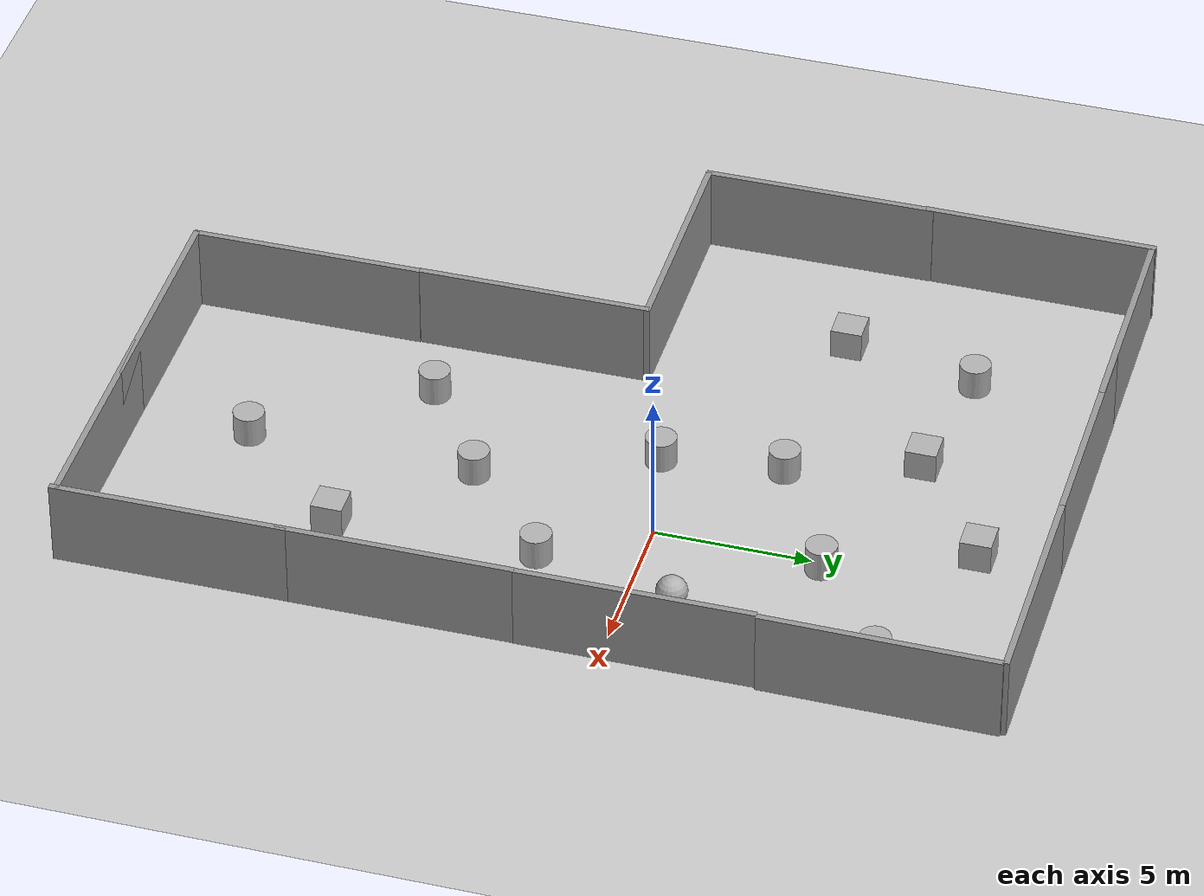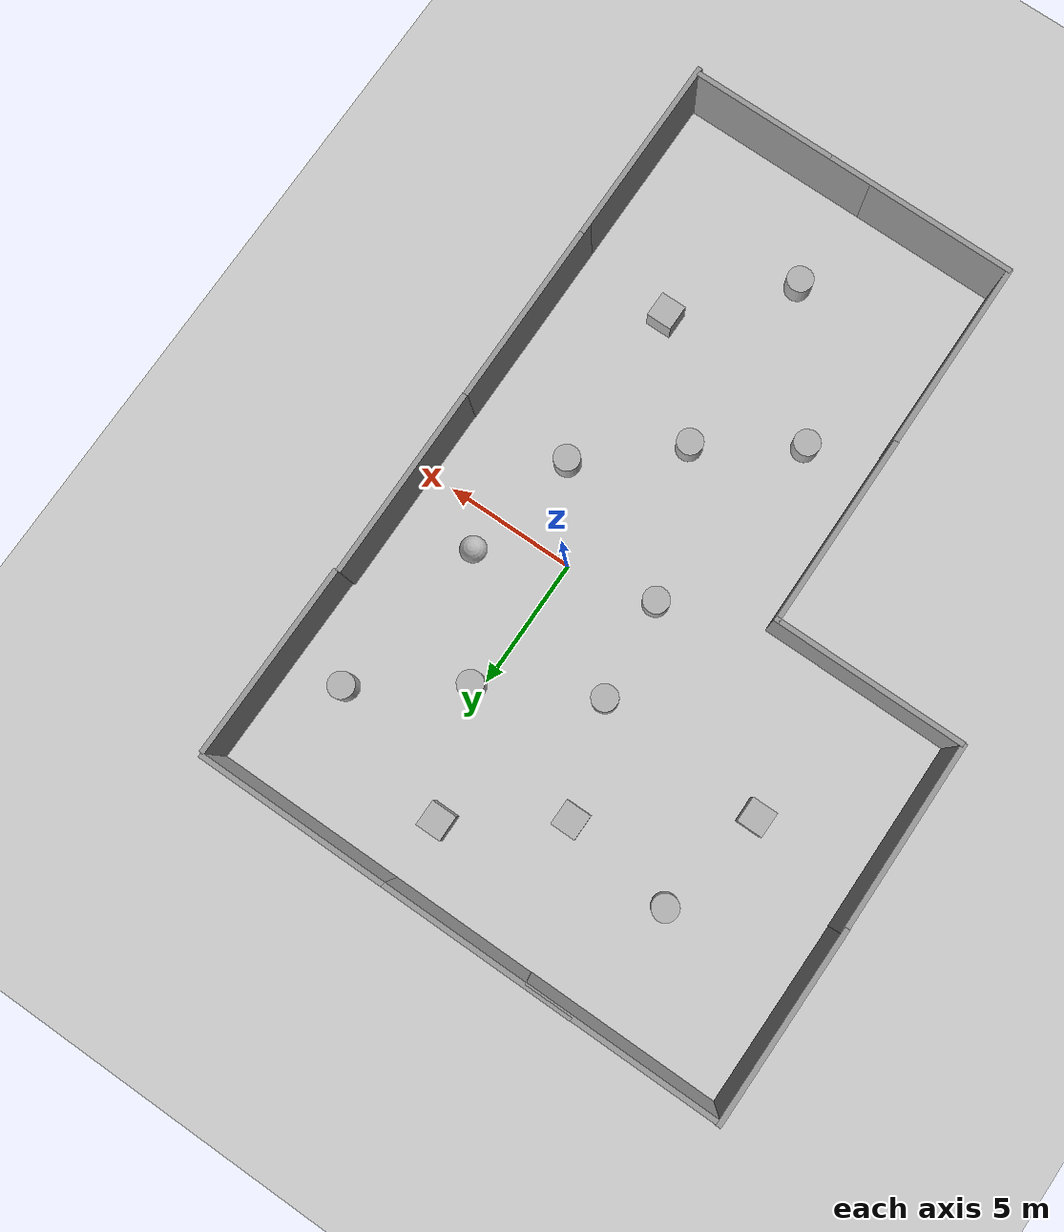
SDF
<sdf version='1.9'>
  <world name='empty'>
    <physics name='1ms' type='ignored'>
      <max_step_size>0.01</max_step_size>
      <real_time_factor>1</real_time_factor>
      <real_time_update_rate>100</real_time_update_rate>
    </physics>
    <plugin name='gz::sim::systems::Physics' filename='ignition-gazebo-physics-system'/>
    <plugin name='gz::sim::systems::UserCommands' filename='ignition-gazebo-user-commands-system'/>
    <plugin name='gz::sim::systems::SceneBroadcaster' filename='ignition-gazebo-scene-broadcaster-system'/>
    <plugin name='gz::sim::systems::Sensors' filename='ignition-gazebo-sensors-system'>
      <render_engine>ogre2</render_engine>
    </plugin>
    <plugin name='gz::sim::systems::Contact' filename='ignition-gazebo-contact-system'/>
    <gravity>0 0 -9.8</gravity>
    <magnetic_field>6e-06 2.3e-05 -4.2e-05</magnetic_field>
    <atmosphere type='adiabatic'/>
    <scene>
      <ambient>0.4 0.4 0.4 1</ambient>
      <background>0.7 0.7 0.7 1</background>
      <shadows>true</shadows>
    </scene>
    <model name='ground_plane'>
      <static>true</static>
      <link name='link'>
        <collision name='collision'>
          <geometry>
            <plane>
              <normal>0 0 1</normal>
              <size>100 100</size>
            </plane>
          </geometry>
          <surface>
            <friction>
              <ode/>
            </friction>
            <bounce/>
            <contact/>
          </surface>
        </collision>
        <visual name='visual'>
          <geometry>
            <plane>
              <normal>0 0 1</normal>
              <size>100 100</size>
            </plane>
          </geometry>
          <material>
            <ambient>0.8 0.8 0.8 1</ambient>
            <diffuse>0.8 0.8 0.8 1</diffuse>
            <specular>0.8 0.8 0.8 1</specular>
          </material>
        </visual>
        <pose>0 0 0 0 -0 0</pose>
        <inertial>
          <pose>0 0 0 0 -0 0</pose>
          <mass>1</mass>
          <inertia>
            <ixx>1</ixx>
            <ixy>0</ixy>
            <ixz>0</ixz>
            <iyy>1</iyy>
            <iyz>0</iyz>
            <izz>1</izz>
          </inertia>
        </inertial>
        <enable_wind>false</enable_wind>
      </link>
      <pose>0 0 0 0 -0 0</pose>
      <self_collide>false</self_collide>
    </model>
    <model name='grey_wall'>
      <static>true</static>
      <link name='link'>
        <pose>0 0 1.4 0 -0 0</pose>
        <collision name='collision'>
          <geometry>
            <box>
              <size>7.5 0.2 2.8</size>
            </box>
          </geometry>
          <surface>
            <friction>
              <ode/>
            </friction>
            <bounce/>
            <contact/>
          </surface>
        </collision>
        <visual name='visual'>
          <cast_shadows>false</cast_shadows>
          <geometry>
            <box>
              <size>7.5 0.2 2.8</size>
            </box>
          </geometry>
          <material>
            <script>
              <uri>https://fuel.gazebosim.org/1.0/openrobotics/models/grey wall/3/files/materials/scripts</uri>
              <uri>https://fuel.gazebosim.org/1.0/openrobotics/models/grey wall/3/files/materials/textures</uri>
              <name>vrc/grey_wall</name>
            </script>
          </material>
        </visual>
        <inertial>
          <pose>0 0 0 0 -0 0</pose>
          <mass>1</mass>
          <inertia>
            <ixx>1</ixx>
            <ixy>0</ixy>
            <ixz>0</ixz>
            <iyy>1</iyy>
            <iyz>0</iyz>
            <izz>1</izz>
          </inertia>
        </inertial>
        <enable_wind>false</enable_wind>
      </link>
      <pose>-10.8562 -2.18445 0 0 -0 0</pose>
      <self_collide>false</self_collide>
    </model>
    <model name='grey_wall_1'>
      <static>true</static>
      <link name='link'>
        <pose>0 0 1.4 0 -0 0</pose>
        <collision name='collision'>
          <geometry>
            <box>
              <size>7.5 0.2 2.8</size>
            </box>
          </geometry>
          <surface>
            <friction>
              <ode/>
            </friction>
            <bounce/>
            <contact/>
          </surface>
        </collision>
        <visual name='visual'>
          <cast_shadows>false</cast_shadows>
          <geometry>
            <box>
              <size>7.5 0.2 2.8</size>
            </box>
          </geometry>
          <material>
            <script>
              <uri>https://fuel.gazebosim.org/1.0/openrobotics/models/grey wall/3/files/materials/scripts</uri>
              <uri>https://fuel.gazebosim.org/1.0/openrobotics/models/grey wall/3/files/materials/textures</uri>
              <name>vrc/grey_wall</name>
            </script>
          </material>
        </visual>
        <inertial>
          <pose>0 0 0 0 -0 0</pose>
          <mass>1</mass>
          <inertia>
            <ixx>1</ixx>
            <ixy>0</ixy>
            <ixz>0</ixz>
            <iyy>1</iyy>
            <iyz>0</iyz>
            <izz>1</izz>
          </inertia>
        </inertial>
        <enable_wind>false</enable_wind>
      </link>
      <pose>-5.09514 12.3734 0 0 -0 0</pose>
      <self_collide>false</self_collide>
    </model>
    <model name='grey_wall_2'>
      <static>true</static>
      <link name='link'>
        <pose>0 0 1.4 0 -0 0</pose>
        <collision name='collision'>
          <geometry>
            <box>
              <size>7.5 0.2 2.8</size>
            </box>
          </geometry>
          <surface>
            <friction>
              <ode/>
            </friction>
            <bounce/>
            <contact/>
          </surface>
        </collision>
        <visual name='visual'>
          <cast_shadows>false</cast_shadows>
          <geometry>
            <box>
              <size>7.5 0.2 2.8</size>
            </box>
          </geometry>
          <material>
            <script>
              <uri>https://fuel.gazebosim.org/1.0/openrobotics/models/grey wall/3/files/materials/scripts</uri>
              <uri>https://fuel.gazebosim.org/1.0/openrobotics/models/grey wall/3/files/materials/textures</uri>
              <name>vrc/grey_wall</name>
            </script>
          </material>
        </visual>
        <inertial>
          <pose>0 0 0 0 -0 0</pose>
          <mass>1</mass>
          <inertia>
            <ixx>1</ixx>
            <ixy>0</ixy>
            <ixz>0</ixz>
            <iyy>1</iyy>
            <iyz>0</iyz>
            <izz>1</izz>
          </inertia>
        </inertial>
        <enable_wind>false</enable_wind>
      </link>
      <pose>2.36376 -17.0414 0 0 -0 0</pose>
      <self_collide>false</self_collide>
    </model>
    <model name='grey_wall_2_1'>
      <static>true</static>
      <link name='link'>
        <pose>0 0 1.4 0 -0 0</pose>
        <collision name='collision'>
          <geometry>
            <box>
              <size>7.5 0.2 2.8</size>
            </box>
          </geometry>
          <surface>
            <friction>
              <ode/>
            </friction>
            <bounce/>
            <contact/>
          </surface>
        </collision>
        <visual name='visual'>
          <cast_shadows>false</cast_shadows>
          <geometry>
            <box>
              <size>7.5 0.2 2.8</size>
            </box>
          </geometry>
          <material>
            <script>
              <uri>https://fuel.gazebosim.org/1.0/openrobotics/models/grey wall/3/files/materials/scripts</uri>
              <uri>https://fuel.gazebosim.org/1.0/openrobotics/models/grey wall/3/files/materials/textures</uri>
              <name>vrc/grey_wall</name>
            </script>
          </material>
        </visual>
        <inertial>
          <pose>0 0 0 0 -0 0</pose>
          <mass>1</mass>
          <inertia>
            <ixx>1</ixx>
            <ixy>0</ixy>
            <ixz>0</ixz>
            <iyy>1</iyy>
            <iyz>0</iyz>
            <izz>1</izz>
          </inertia>
        </inertial>
        <enable_wind>false</enable_wind>
      </link>
      <pose>5.98912 1.07573 0 0 0 -1.56775</pose>
      <self_collide>false</self_collide>
    </model>
    <model name='box'>
      <pose>-5.19691 7.24828 0.5 0 -0 0</pose>
      <link name='box_link'>
        <inertial>
          <inertia>
            <ixx>0.16666</ixx>
            <ixy>0</ixy>
            <ixz>0</ixz>
            <iyy>0.16666</iyy>
            <iyz>0</iyz>
            <izz>0.16666</izz>
          </inertia>
          <mass>1</mass>
          <pose>0 0 0 0 -0 0</pose>
        </inertial>
        <collision name='box_collision'>
          <geometry>
            <box>
              <size>1 1 1</size>
            </box>
          </geometry>
          <surface>
            <friction>
              <ode/>
            </friction>
            <bounce/>
            <contact/>
          </surface>
        </collision>
        <visual name='box_visual'>
          <geometry>
            <box>
              <size>1 1 1</size>
            </box>
          </geometry>
          <material>
            <ambient>0.3 0.3 0.3 1</ambient>
            <diffuse>0.7 0.7 0.7 1</diffuse>
            <specular>1 1 1 1</specular>
          </material>
        </visual>
        <pose>0 0 0 0 -0 0</pose>
        <enable_wind>false</enable_wind>
      </link>
      <static>false</static>
      <self_collide>false</self_collide>
    </model>
    <model name='cylinder'>
      <pose>-3.80329 3.16237 0.499999 0 -0 0</pose>
      <link name='cylinder_link'>
        <inertial>
          <inertia>
            <ixx>0.14580000000000001</ixx>
            <ixy>0</ixy>
            <ixz>0</ixz>
            <iyy>0.14580000000000001</iyy>
            <iyz>0</iyz>
            <izz>0.125</izz>
          </inertia>
          <mass>1</mass>
          <pose>0 0 0 0 -0 0</pose>
        </inertial>
        <collision name='cylinder_collision'>
          <geometry>
            <cylinder>
              <radius>0.5</radius>
              <length>1</length>
            </cylinder>
          </geometry>
          <surface>
            <friction>
              <ode/>
            </friction>
            <bounce/>
            <contact/>
          </surface>
        </collision>
        <visual name='cylinder_visual'>
          <geometry>
            <cylinder>
              <radius>0.5</radius>
              <length>1</length>
            </cylinder>
          </geometry>
          <material>
            <ambient>0.3 0.3 0.3 1</ambient>
            <diffuse>0.7 0.7 0.7 1</diffuse>
            <specular>1 1 1 1</specular>
          </material>
        </visual>
        <pose>0 0 0 0 -0 0</pose>
        <enable_wind>false</enable_wind>
      </link>
      <static>false</static>
      <self_collide>false</self_collide>
    </model>
    <model name='box_0'>
      <pose>-1.41691 9.86738 0.5 0 -0 0</pose>
      <link name='box_link'>
        <inertial>
          <inertia>
            <ixx>0.16666</ixx>
            <ixy>0</ixy>
            <ixz>0</ixz>
            <iyy>0.16666</iyy>
            <iyz>0</iyz>
            <izz>0.16666</izz>
          </inertia>
          <mass>1</mass>
          <pose>0 0 0 0 -0 0</pose>
        </inertial>
        <collision name='box_collision'>
          <geometry>
            <box>
              <size>1 1 1</size>
            </box>
          </geometry>
          <surface>
            <friction>
              <ode/>
            </friction>
            <bounce/>
            <contact/>
          </surface>
        </collision>
        <visual name='box_visual'>
          <geometry>
            <box>
              <size>1 1 1</size>
            </box>
          </geometry>
          <material>
            <ambient>0.3 0.3 0.3 1</ambient>
            <diffuse>0.7 0.7 0.7 1</diffuse>
            <specular>1 1 1 1</specular>
          </material>
        </visual>
        <pose>0 0 0 0 -0 0</pose>
        <enable_wind>false</enable_wind>
      </link>
      <static>false</static>
      <self_collide>false</self_collide>
    </model>
    <model name='cylinder_0'>
      <pose>2.13133 -3.10354 0.499999 0 -0 0</pose>
      <link name='cylinder_link'>
        <inertial>
          <inertia>
            <ixx>0.14580000000000001</ixx>
            <ixy>0</ixy>
            <ixz>0</ixz>
            <iyy>0.14580000000000001</iyy>
            <iyz>0</iyz>
            <izz>0.125</izz>
          </inertia>
          <mass>1</mass>
          <pose>0 0 0 0 -0 0</pose>
        </inertial>
        <collision name='cylinder_collision'>
          <geometry>
            <cylinder>
              <radius>0.5</radius>
              <length>1</length>
            </cylinder>
          </geometry>
          <surface>
            <friction>
              <ode/>
            </friction>
            <bounce/>
            <contact/>
          </surface>
        </collision>
        <visual name='cylinder_visual'>
          <geometry>
            <cylinder>
              <radius>0.5</radius>
              <length>1</length>
            </cylinder>
          </geometry>
          <material>
            <ambient>0.3 0.3 0.3 1</ambient>
            <diffuse>0.7 0.7 0.7 1</diffuse>
            <specular>1 1 1 1</specular>
          </material>
        </visual>
        <pose>0 0 0 0 -0 0</pose>
        <enable_wind>false</enable_wind>
      </link>
      <static>false</static>
      <self_collide>false</self_collide>
    </model>
    <model name='cylinder_1'>
      <pose>0.324929 5.38337 0.499999 0 -0 0</pose>
      <link name='cylinder_link'>
        <inertial>
          <inertia>
            <ixx>0.14580000000000001</ixx>
            <ixy>0</ixy>
            <ixz>0</ixz>
            <iyy>0.14580000000000001</iyy>
            <iyz>0</iyz>
            <izz>0.125</izz>
          </inertia>
          <mass>1</mass>
          <pose>0 0 0 0 -0 0</pose>
        </inertial>
        <collision name='cylinder_collision'>
          <geometry>
            <cylinder>
              <radius>0.5</radius>
              <length>1</length>
            </cylinder>
          </geometry>
          <surface>
            <friction>
              <ode/>
            </friction>
            <bounce/>
            <contact/>
          </surface>
        </collision>
        <visual name='cylinder_visual'>
          <geometry>
            <cylinder>
              <radius>0.5</radius>
              <length>1</length>
            </cylinder>
          </geometry>
          <material>
            <ambient>0.3 0.3 0.3 1</ambient>
            <diffuse>0.7 0.7 0.7 1</diffuse>
            <specular>1 1 1 1</specular>
          </material>
        </visual>
        <pose>0 0 0 0 -0 0</pose>
        <enable_wind>false</enable_wind>
      </link>
      <static>false</static>
      <self_collide>false</self_collide>
    </model>
    <model name='box_1'>
      <pose>-10.4125 3.57772 0.5 0 -0 0</pose>
      <link name='box_link'>
        <inertial>
          <inertia>
            <ixx>0.16666</ixx>
            <ixy>0</ixy>
            <ixz>0</ixz>
            <iyy>0.16666</iyy>
            <iyz>0</iyz>
            <izz>0.16666</izz>
          </inertia>
          <mass>1</mass>
          <pose>0 0 0 0 -0 0</pose>
        </inertial>
        <collision name='box_collision'>
          <geometry>
            <box>
              <size>1 1 1</size>
            </box>
          </geometry>
          <surface>
            <friction>
              <ode/>
            </friction>
            <bounce/>
            <contact/>
          </surface>
        </collision>
        <visual name='box_visual'>
          <geometry>
            <box>
              <size>1 1 1</size>
            </box>
          </geometry>
          <material>
            <ambient>0.3 0.3 0.3 1</ambient>
            <diffuse>0.7 0.7 0.7 1</diffuse>
            <specular>1 1 1 1</specular>
          </material>
        </visual>
        <pose>0 0 0 0 -0 0</pose>
        <enable_wind>false</enable_wind>
      </link>
      <static>false</static>
      <self_collide>false</self_collide>
    </model>
    <model name='cylinder_2'>
      <pose>-9.51728 7.86345 0.499999 0 -0 0</pose>
      <link name='cylinder_link'>
        <inertial>
          <inertia>
            <ixx>0.14580000000000001</ixx>
            <ixy>0</ixy>
            <ixz>0</ixz>
            <iyy>0.14580000000000001</iyy>
            <iyz>0</iyz>
            <izz>0.125</izz>
          </inertia>
          <mass>1</mass>
          <pose>0 0 0 0 -0 0</pose>
        </inertial>
        <collision name='cylinder_collision'>
          <geometry>
            <cylinder>
              <radius>0.5</radius>
              <length>1</length>
            </cylinder>
          </geometry>
          <surface>
            <friction>
              <ode/>
            </friction>
            <bounce/>
            <contact/>
          </surface>
        </collision>
        <visual name='cylinder_visual'>
          <geometry>
            <cylinder>
              <radius>0.5</radius>
              <length>1</length>
            </cylinder>
          </geometry>
          <material>
            <ambient>0.3 0.3 0.3 1</ambient>
            <diffuse>0.7 0.7 0.7 1</diffuse>
            <specular>1 1 1 1</specular>
          </material>
        </visual>
        <pose>0 0 0 0 -0 0</pose>
        <enable_wind>false</enable_wind>
      </link>
      <static>false</static>
      <self_collide>false</self_collide>
    </model>
    <model name='sphere'>
      <pose>3.05579 1.42805 0.5 0 -0 0</pose>
      <link name='sphere_link'>
        <inertial>
          <inertia>
            <ixx>0.10000000000000001</ixx>
            <ixy>0</ixy>
            <ixz>0</ixz>
            <iyy>0.10000000000000001</iyy>
            <iyz>0</iyz>
            <izz>0.10000000000000001</izz>
          </inertia>
          <mass>1</mass>
          <pose>0 0 0 0 -0 0</pose>
        </inertial>
        <collision name='sphere_collision'>
          <geometry>
            <sphere>
              <radius>0.5</radius>
            </sphere>
          </geometry>
          <surface>
            <friction>
              <ode/>
            </friction>
            <bounce/>
            <contact/>
          </surface>
        </collision>
        <visual name='sphere_visual'>
          <geometry>
            <sphere>
              <radius>0.5</radius>
            </sphere>
          </geometry>
          <material>
            <ambient>0.3 0.3 0.3 1</ambient>
            <diffuse>0.7 0.7 0.7 1</diffuse>
            <specular>1 1 1 1</specular>
          </material>
        </visual>
        <pose>0 0 0 0 -0 0</pose>
        <enable_wind>false</enable_wind>
      </link>
      <static>false</static>
      <self_collide>false</self_collide>
    </model>
    <model name='cylinder_3'>
      <pose>3.9896 7.95699 0.499999 0 -0 0</pose>
      <link name='cylinder_link'>
        <inertial>
          <inertia>
            <ixx>0.14580000000000001</ixx>
            <ixy>0</ixy>
            <ixz>0</ixz>
            <iyy>0.14580000000000001</iyy>
            <iyz>0</iyz>
            <izz>0.125</izz>
          </inertia>
          <mass>1</mass>
          <pose>0 0 0 0 -0 0</pose>
        </inertial>
        <collision name='cylinder_collision'>
          <geometry>
            <cylinder>
              <radius>0.5</radius>
              <length>1</length>
            </cylinder>
          </geometry>
          <surface>
            <friction>
              <ode/>
            </friction>
            <bounce/>
            <contact/>
          </surface>
        </collision>
        <visual name='cylinder_visual'>
          <geometry>
            <cylinder>
              <radius>0.5</radius>
              <length>1</length>
            </cylinder>
          </geometry>
          <material>
            <ambient>0.3 0.3 0.3 1</ambient>
            <diffuse>0.7 0.7 0.7 1</diffuse>
            <specular>1 1 1 1</specular>
          </material>
        </visual>
        <pose>0 0 0 0 -0 0</pose>
        <enable_wind>false</enable_wind>
      </link>
      <static>false</static>
      <self_collide>false</self_collide>
    </model>
    <model name='cylinder_4'>
      <pose>-4.62425 -8.38781 0.499999 0 -0 0</pose>
      <link name='cylinder_link'>
        <inertial>
          <inertia>
            <ixx>0.14580000000000001</ixx>
            <ixy>0</ixy>
            <ixz>0</ixz>
            <iyy>0.14580000000000001</iyy>
            <iyz>0</iyz>
            <izz>0.125</izz>
          </inertia>
          <mass>1</mass>
          <pose>0 0 0 0 -0 0</pose>
        </inertial>
        <collision name='cylinder_collision'>
          <geometry>
            <cylinder>
              <radius>0.5</radius>
              <length>1</length>
            </cylinder>
          </geometry>
          <surface>
            <friction>
              <ode/>
            </friction>
            <bounce/>
            <contact/>
          </surface>
        </collision>
        <visual name='cylinder_visual'>
          <geometry>
            <cylinder>
              <radius>0.5</radius>
              <length>1</length>
            </cylinder>
          </geometry>
          <material>
            <ambient>0.3 0.3 0.3 1</ambient>
            <diffuse>0.7 0.7 0.7 1</diffuse>
            <specular>1 1 1 1</specular>
          </material>
        </visual>
        <pose>0 0 0 0 -0 0</pose>
        <enable_wind>false</enable_wind>
      </link>
      <static>false</static>
      <self_collide>false</self_collide>
    </model>
    <model name='grey_wall_2_1_1'>
      <static>true</static>
      <link name='link'>
        <pose>0 0 1.4 0 -0 0</pose>
        <collision name='collision'>
          <geometry>
            <box>
              <size>7.5 0.2 2.8</size>
            </box>
          </geometry>
          <surface>
            <friction>
              <ode/>
            </friction>
            <bounce/>
            <contact/>
          </surface>
        </collision>
        <visual name='visual'>
          <cast_shadows>false</cast_shadows>
          <geometry>
            <box>
              <size>7.5 0.2 2.8</size>
            </box>
          </geometry>
          <material>
            <script>
              <uri>https://fuel.gazebosim.org/1.0/openrobotics/models/grey wall/3/files/materials/scripts</uri>
              <uri>https://fuel.gazebosim.org/1.0/openrobotics/models/grey wall/3/files/materials/textures</uri>
              <name>vrc/grey_wall</name>
            </script>
          </material>
        </visual>
        <inertial>
          <pose>0 0 0 0 -0 0</pose>
          <mass>1</mass>
          <inertia>
            <ixx>1</ixx>
            <ixy>0</ixy>
            <ixz>0</ixz>
            <iyy>1</iyy>
            <iyz>0</iyz>
            <izz>1</izz>
          </inertia>
        </inertial>
        <enable_wind>false</enable_wind>
      </link>
      <pose>6.08854 8.56141 0 0 -0 1.56302</pose>
      <self_collide>false</self_collide>
    </model>
    <model name='grey_wall_2_1_1_1'>
      <static>true</static>
      <link name='link'>
        <pose>0 0 1.4 0 -0 0</pose>
        <collision name='collision'>
          <geometry>
            <box>
              <size>7.5 0.2 2.8</size>
            </box>
          </geometry>
          <surface>
            <friction>
              <ode/>
            </friction>
            <bounce/>
            <contact/>
          </surface>
        </collision>
        <visual name='visual'>
          <cast_shadows>false</cast_shadows>
          <geometry>
            <box>
              <size>7.5 0.2 2.8</size>
            </box>
          </geometry>
          <material>
            <script>
              <uri>https://fuel.gazebosim.org/1.0/openrobotics/models/grey wall/3/files/materials/scripts</uri>
              <uri>https://fuel.gazebosim.org/1.0/openrobotics/models/grey wall/3/files/materials/textures</uri>
              <name>vrc/grey_wall</name>
            </script>
          </material>
        </visual>
        <inertial>
          <pose>0 0 0 0 -0 0</pose>
          <mass>1</mass>
          <inertia>
            <ixx>1</ixx>
            <ixy>0</ixy>
            <ixz>0</ixz>
            <iyy>1</iyy>
            <iyz>0</iyz>
            <izz>1</izz>
          </inertia>
        </inertial>
        <enable_wind>false</enable_wind>
      </link>
      <pose>-14.618 8.72811 0 0 -0 1.56302</pose>
      <self_collide>false</self_collide>
    </model>
    <model name='cylinder_5'>
      <pose>-3.35729 -0.673561 0.499999 0 -0 0</pose>
      <link name='cylinder_link'>
        <inertial>
          <inertia>
            <ixx>0.14580000000000001</ixx>
            <ixy>0</ixy>
            <ixz>0</ixz>
            <iyy>0.14580000000000001</iyy>
            <iyz>0</iyz>
            <izz>0.125</izz>
          </inertia>
          <mass>1</mass>
          <pose>0 0 0 0 -0 0</pose>
        </inertial>
        <collision name='cylinder_collision'>
          <geometry>
            <cylinder>
              <radius>0.5</radius>
              <length>1</length>
            </cylinder>
          </geometry>
          <surface>
            <friction>
              <ode/>
            </friction>
            <bounce/>
            <contact/>
          </surface>
        </collision>
        <visual name='cylinder_visual'>
          <geometry>
            <cylinder>
              <radius>0.5</radius>
              <length>1</length>
            </cylinder>
          </geometry>
          <material>
            <ambient>0.3 0.3 0.3 1</ambient>
            <diffuse>0.7 0.7 0.7 1</diffuse>
            <specular>1 1 1 1</specular>
          </material>
        </visual>
        <pose>0 0 0 0 -0 0</pose>
        <enable_wind>false</enable_wind>
      </link>
      <static>false</static>
      <self_collide>false</self_collide>
    </model>
    <model name='grey_wall_2_1_2'>
      <static>true</static>
      <link name='link'>
        <pose>0 0 1.4 0 -0 0</pose>
        <collision name='collision'>
          <geometry>
            <box>
              <size>7.5 0.2 2.8</size>
            </box>
          </geometry>
          <surface>
            <friction>
              <ode/>
            </friction>
            <bounce/>
            <contact/>
          </surface>
        </collision>
        <visual name='visual'>
          <cast_shadows>false</cast_shadows>
          <geometry>
            <box>
              <size>7.5 0.2 2.8</size>
            </box>
          </geometry>
          <material>
            <script>
              <uri>https://fuel.gazebosim.org/1.0/openrobotics/models/grey wall/3/files/materials/scripts</uri>
              <uri>https://fuel.gazebosim.org/1.0/openrobotics/models/grey wall/3/files/materials/textures</uri>
              <name>vrc/grey_wall</name>
            </script>
          </material>
        </visual>
        <inertial>
          <pose>0 0 0 0 -0 0</pose>
          <mass>1</mass>
          <inertia>
            <ixx>1</ixx>
            <ixy>0</ixy>
            <ixz>0</ixz>
            <iyy>1</iyy>
            <iyz>0</iyz>
            <izz>1</izz>
          </inertia>
        </inertial>
        <enable_wind>false</enable_wind>
      </link>
      <pose>-7.19686 -5.89135 0 0 0 -1.56775</pose>
      <self_collide>false</self_collide>
    </model>
    <model name='grey_wall_2_1_3'>
      <static>true</static>
      <link name='link'>
        <pose>0 0 1.4 0 -0 0</pose>
        <collision name='collision'>
          <geometry>
            <box>
              <size>7.5 0.2 2.8</size>
            </box>
          </geometry>
          <surface>
            <friction>
              <ode/>
            </friction>
            <bounce/>
            <contact/>
          </surface>
        </collision>
        <visual name='visual'>
          <cast_shadows>false</cast_shadows>
          <geometry>
            <box>
              <size>7.5 0.2 2.8</size>
            </box>
          </geometry>
          <material>
            <script>
              <uri>https://fuel.gazebosim.org/1.0/openrobotics/models/grey wall/3/files/materials/scripts</uri>
              <uri>https://fuel.gazebosim.org/1.0/openrobotics/models/grey wall/3/files/materials/textures</uri>
              <name>vrc/grey_wall</name>
            </script>
          </material>
        </visual>
        <inertial>
          <pose>0 0 0 0 -0 0</pose>
          <mass>1</mass>
          <inertia>
            <ixx>1</ixx>
            <ixy>0</ixy>
            <ixz>0</ixz>
            <iyy>1</iyy>
            <iyz>0</iyz>
            <izz>1</izz>
          </inertia>
        </inertial>
        <enable_wind>false</enable_wind>
      </link>
      <pose>6.02004 -13.5024 0 0 0 -1.56775</pose>
      <self_collide>false</self_collide>
    </model>
    <model name='grey_wall_2_1_2_1'>
      <static>true</static>
      <link name='link'>
        <pose>0 0 1.4 0 -0 0</pose>
        <collision name='collision'>
          <geometry>
            <box>
              <size>7.5 0.2 2.8</size>
            </box>
          </geometry>
          <surface>
            <friction>
              <ode/>
            </friction>
            <bounce/>
            <contact/>
          </surface>
        </collision>
        <visual name='visual'>
          <cast_shadows>false</cast_shadows>
          <geometry>
            <box>
              <size>7.5 0.2 2.8</size>
            </box>
          </geometry>
          <material>
            <script>
              <uri>https://fuel.gazebosim.org/1.0/openrobotics/models/grey wall/3/files/materials/scripts</uri>
              <uri>https://fuel.gazebosim.org/1.0/openrobotics/models/grey wall/3/files/materials/textures</uri>
              <name>vrc/grey_wall</name>
            </script>
          </material>
        </visual>
        <inertial>
          <pose>0 0 0 0 -0 0</pose>
          <mass>1</mass>
          <inertia>
            <ixx>1</ixx>
            <ixy>0</ixy>
            <ixz>0</ixz>
            <iyy>1</iyy>
            <iyz>0</iyz>
            <izz>1</izz>
          </inertia>
        </inertial>
        <enable_wind>false</enable_wind>
      </link>
      <pose>-7.15279 -13.3712 0 0 0 -1.56775</pose>
      <self_collide>false</self_collide>
    </model>
    <model name='grey_wall_2_2'>
      <static>true</static>
      <link name='link'>
        <pose>0 0 1.4 0 -0 0</pose>
        <collision name='collision'>
          <geometry>
            <box>
              <size>7.5 0.2 2.8</size>
            </box>
          </geometry>
          <surface>
            <friction>
              <ode/>
            </friction>
            <bounce/>
            <contact/>
          </surface>
        </collision>
        <visual name='visual'>
          <cast_shadows>false</cast_shadows>
          <geometry>
            <box>
              <size>7.5 0.2 2.8</size>
            </box>
          </geometry>
          <material>
            <script>
              <uri>https://fuel.gazebosim.org/1.0/openrobotics/models/grey wall/3/files/materials/scripts</uri>
              <uri>https://fuel.gazebosim.org/1.0/openrobotics/models/grey wall/3/files/materials/textures</uri>
              <name>vrc/grey_wall</name>
            </script>
          </material>
        </visual>
        <inertial>
          <pose>0 0 0 0 -0 0</pose>
          <mass>1</mass>
          <inertia>
            <ixx>1</ixx>
            <ixy>0</ixy>
            <ixz>0</ixz>
            <iyy>1</iyy>
            <iyz>0</iyz>
            <izz>1</izz>
          </inertia>
        </inertial>
        <enable_wind>false</enable_wind>
      </link>
      <pose>2.3842 12.3754 0 0 -0 0</pose>
      <self_collide>false</self_collide>
    </model>
    <model name='cylinder_0_1'>
      <pose>-1.15814 -6.06292 0.499999 0 -0 0</pose>
      <link name='cylinder_link'>
        <inertial>
          <inertia>
            <ixx>0.14580000000000001</ixx>
            <ixy>0</ixy>
            <ixz>0</ixz>
            <iyy>0.14580000000000001</iyy>
            <iyz>0</iyz>
            <izz>0.125</izz>
          </inertia>
          <mass>1</mass>
          <pose>0 0 0 0 -0 0</pose>
        </inertial>
        <collision name='cylinder_collision'>
          <geometry>
            <cylinder>
              <radius>0.5</radius>
              <length>1</length>
            </cylinder>
          </geometry>
          <surface>
            <friction>
              <ode/>
            </friction>
            <bounce/>
            <contact/>
          </surface>
        </collision>
        <visual name='cylinder_visual'>
          <geometry>
            <cylinder>
              <radius>0.5</radius>
              <length>1</length>
            </cylinder>
          </geometry>
          <material>
            <ambient>0.3 0.3 0.3 1</ambient>
            <diffuse>0.7 0.7 0.7 1</diffuse>
            <specular>1 1 1 1</specular>
          </material>
        </visual>
        <pose>0 0 0 0 -0 0</pose>
        <enable_wind>false</enable_wind>
      </link>
      <static>false</static>
      <self_collide>false</self_collide>
    </model>
    <model name='box_0_1'>
      <pose>2.25731 -9.60557 0.5 0 -0 0</pose>
      <link name='box_link'>
        <inertial>
          <inertia>
            <ixx>0.16666</ixx>
            <ixy>0</ixy>
            <ixz>0</ixz>
            <iyy>0.16666</iyy>
            <iyz>0</iyz>
            <izz>0.16666</izz>
          </inertia>
          <mass>1</mass>
          <pose>0 0 0 0 -0 0</pose>
        </inertial>
        <collision name='box_collision'>
          <geometry>
            <box>
              <size>1 1 1</size>
            </box>
          </geometry>
          <surface>
            <friction>
              <ode/>
            </friction>
            <bounce/>
            <contact/>
          </surface>
        </collision>
        <visual name='box_visual'>
          <geometry>
            <box>
              <size>1 1 1</size>
            </box>
          </geometry>
          <material>
            <ambient>0.3 0.3 0.3 1</ambient>
            <diffuse>0.7 0.7 0.7 1</diffuse>
            <specular>1 1 1 1</specular>
          </material>
        </visual>
        <pose>0 0 0 0 -0 0</pose>
        <enable_wind>false</enable_wind>
      </link>
      <static>false</static>
      <self_collide>false</self_collide>
    </model>
    <model name='grey_wall_1_1'>
      <static>true</static>
      <link name='link'>
        <pose>0 0 1.4 0 -0 0</pose>
        <collision name='collision'>
          <geometry>
            <box>
              <size>7.5 0.2 2.8</size>
            </box>
          </geometry>
          <surface>
            <friction>
              <ode/>
            </friction>
            <bounce/>
            <contact/>
          </surface>
        </collision>
        <visual name='visual'>
          <cast_shadows>false</cast_shadows>
          <geometry>
            <box>
              <size>7.5 0.2 2.8</size>
            </box>
          </geometry>
          <material>
            <script>
              <uri>https://fuel.gazebosim.org/1.0/openrobotics/models/grey wall/3/files/materials/scripts</uri>
              <uri>https://fuel.gazebosim.org/1.0/openrobotics/models/grey wall/3/files/materials/textures</uri>
              <name>vrc/grey_wall</name>
            </script>
          </material>
        </visual>
        <inertial>
          <pose>0 0 0 0 -0 0</pose>
          <mass>1</mass>
          <inertia>
            <ixx>1</ixx>
            <ixy>0</ixy>
            <ixz>0</ixz>
            <iyy>1</iyy>
            <iyz>0</iyz>
            <izz>1</izz>
          </inertia>
        </inertial>
        <enable_wind>false</enable_wind>
      </link>
      <pose>-10.7381 12.3602 0 0 -0 0</pose>
      <self_collide>false</self_collide>
    </model>
    <model name='grey_wall_2_1_4'>
      <static>true</static>
      <link name='link'>
        <pose>0 0 1.4 0 -0 0</pose>
        <collision name='collision'>
          <geometry>
            <box>
              <size>7.5 0.2 2.8</size>
            </box>
          </geometry>
          <surface>
            <friction>
              <ode/>
            </friction>
            <bounce/>
            <contact/>
          </surface>
        </collision>
        <visual name='visual'>
          <cast_shadows>false</cast_shadows>
          <geometry>
            <box>
              <size>7.5 0.2 2.8</size>
            </box>
          </geometry>
          <material>
            <script>
              <uri>https://fuel.gazebosim.org/1.0/openrobotics/models/grey wall/3/files/materials/scripts</uri>
              <uri>https://fuel.gazebosim.org/1.0/openrobotics/models/grey wall/3/files/materials/textures</uri>
              <name>vrc/grey_wall</name>
            </script>
          </material>
        </visual>
        <inertial>
          <pose>0 0 0 0 -0 0</pose>
          <mass>1</mass>
          <inertia>
            <ixx>1</ixx>
            <ixy>0</ixy>
            <ixz>0</ixz>
            <iyy>1</iyy>
            <iyz>0</iyz>
            <izz>1</izz>
          </inertia>
        </inertial>
        <enable_wind>false</enable_wind>
      </link>
      <pose>-14.6172 1.48789 0 0 0 -1.56775</pose>
      <self_collide>false</self_collide>
    </model>
    <model name='grey_wall_2_1_3_1'>
      <static>true</static>
      <link name='link'>
        <pose>0 0 1.4 0 0 0</pose>
        <collision name='collision'>
          <geometry>
            <box>
              <size>7.5 0.2 2.8</size>
            </box>
          </geometry>
          <surface>
            <friction>
              <ode/>
            </friction>
            <bounce/>
            <contact/>
          </surface>
        </collision>
        <visual name='visual'>
          <cast_shadows>false</cast_shadows>
          <geometry>
            <box>
              <size>7.5 0.2 2.8</size>
            </box>
          </geometry>
          <material>
            <script>
              <uri>https://fuel.gazebosim.org/1.0/openrobotics/models/grey wall/3/files/materials/scripts</uri>
              <uri>https://fuel.gazebosim.org/1.0/openrobotics/models/grey wall/3/files/materials/textures</uri>
              <name>vrc/grey_wall</name>
            </script>
          </material>
        </visual>
      </link>
      <pose>5.99837 -6.39056 0 0 0 -1.56775</pose>
      <self_collide>false</self_collide>
    </model>
    <model name='grey_wall_2_3'>
      <static>true</static>
      <link name='link'>
        <pose>0 0 1.4 0 -0 0</pose>
        <collision name='collision'>
          <geometry>
            <box>
              <size>7.5 0.2 2.8</size>
            </box>
          </geometry>
          <surface>
            <friction>
              <ode/>
            </friction>
            <bounce/>
            <contact/>
          </surface>
        </collision>
        <visual name='visual'>
          <cast_shadows>false</cast_shadows>
          <geometry>
            <box>
              <size>7.5 0.2 2.8</size>
            </box>
          </geometry>
          <material>
            <script>
              <uri>https://fuel.gazebosim.org/1.0/openrobotics/models/grey wall/3/files/materials/scripts</uri>
              <uri>https://fuel.gazebosim.org/1.0/openrobotics/models/grey wall/3/files/materials/textures</uri>
              <name>vrc/grey_wall</name>
            </script>
          </material>
        </visual>
        <inertial>
          <pose>0 0 0 0 -0 0</pose>
          <mass>1</mass>
          <inertia>
            <ixx>1</ixx>
            <ixy>0</ixy>
            <ixz>0</ixz>
            <iyy>1</iyy>
            <iyz>0</iyz>
            <izz>1</izz>
          </inertia>
        </inertial>
        <enable_wind>false</enable_wind>
      </link>
      <pose>-3.44112 -17.0414 0 0 -0 0</pose>
      <self_collide>false</self_collide>
    </model>
    <model name='cylinder_5_1'>
      <pose>-1.07848 -13.3456 0.499999 0 -0 0</pose>
      <link name='cylinder_link'>
        <inertial>
          <inertia>
            <ixx>0.14580000000000001</ixx>
            <ixy>0</ixy>
            <ixz>0</ixz>
            <iyy>0.14580000000000001</iyy>
            <iyz>0</iyz>
            <izz>0.125</izz>
          </inertia>
          <mass>1</mass>
          <pose>0 0 0 0 -0 0</pose>
        </inertial>
        <collision name='cylinder_collision'>
          <geometry>
            <cylinder>
              <radius>0.5</radius>
              <length>1</length>
            </cylinder>
          </geometry>
          <surface>
            <friction>
              <ode/>
            </friction>
            <bounce/>
            <contact/>
          </surface>
        </collision>
        <visual name='cylinder_visual'>
          <geometry>
            <cylinder>
              <radius>0.5</radius>
              <length>1</length>
            </cylinder>
          </geometry>
          <material>
            <ambient>0.3 0.3 0.3 1</ambient>
            <diffuse>0.7 0.7 0.7 1</diffuse>
            <specular>1 1 1 1</specular>
          </material>
        </visual>
        <pose>0 0 0 0 -0 0</pose>
        <enable_wind>false</enable_wind>
      </link>
      <static>false</static>
      <self_collide>false</self_collide>
    </model>
    <light name='sun' type='directional'>
      <pose>0 0 10 0 -0 0</pose>
      <cast_shadows>true</cast_shadows>
      <intensity>1</intensity>
      <direction>-0.5 0.1 -0.9</direction>
      <diffuse>0.8 0.8 0.8 1</diffuse>
      <specular>0.2 0.2 0.2 1</specular>
      <attenuation>
        <range>1000</range>
        <linear>0.01</linear>
        <constant>0.90000000000000002</constant>
        <quadratic>0.001</quadratic>
      </attenuation>
      <spot>
        <inner_angle>0</inner_angle>
        <outer_angle>0</outer_angle>
        <falloff>0</falloff>
      </spot>
    </light>
  </world>
</sdf>
